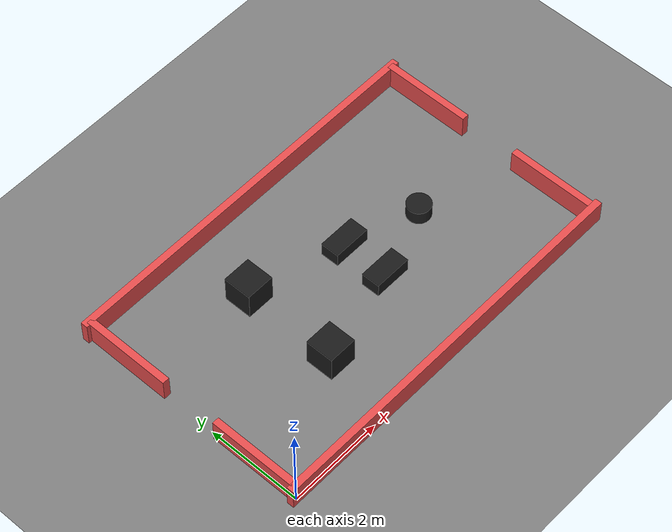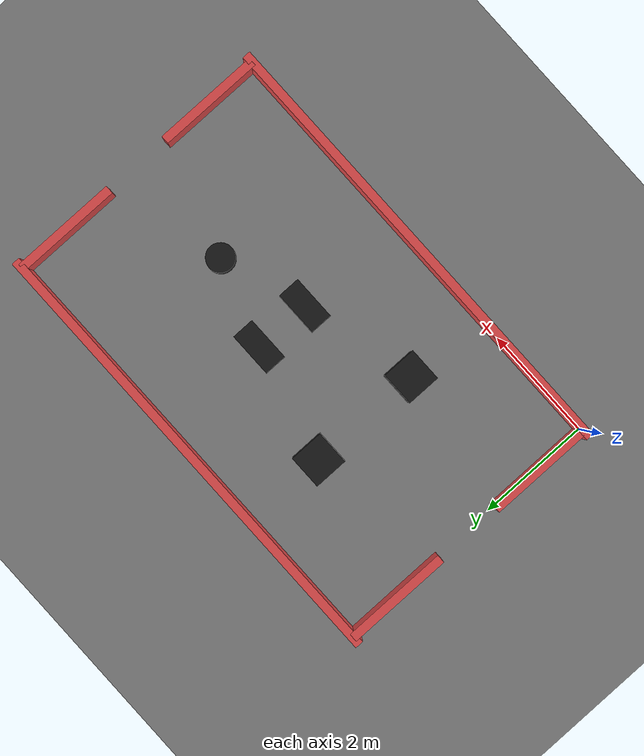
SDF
<?xml version="1.0" ?>
<sdf version="1.6">
  <world name="robot_scene">
    <physics name="default_physics" default="true" type="ode">
      <gravity>0 0 -9.81</gravity>
      <max_step_size>0.004</max_step_size>
      <real_time_factor>1</real_time_factor>
      <real_time_update_rate>250</real_time_update_rate>
    </physics>

    <include>
      <uri>model://sun</uri>
    </include>

    <model name="ground_plane">
      <static>true</static>
      <link name="link">
        <collision name="collision">
          <geometry>
            <plane>
              <normal>0 0 1</normal>
              <size>20 20</size>
            </plane>
          </geometry>
          <surface>
            <friction>
              <ode>
                <mu>10.0</mu>
                <mu2>10.0</mu2>
                <slip1>0.0</slip1>
                <slip2>0.0</slip2>
              </ode>
            </friction>
          </surface>
        </collision>
        <visual name="visual">
          <geometry>
            <plane>
              <normal>0 0 1</normal>
              <size>20 20</size>
            </plane>
          </geometry>
          <material>
            <ambient>0.3 0.3 0.3 1.0</ambient>
            <diffuse>0.5 0.5 0.5 1.0</diffuse>
            <specular>0.1 0.1 0.1 1.0</specular>
          </material>
        </visual>
      </link>
    </model>

    <!-- Boundary Walls: Arena 8 x 5 meters, height 0.5m, thickness 0.15m -->
    <!-- Entrance on left: y in [1.9, 3.1]; Exit on right: y in [1.9, 3.1] -->

    <model name="wall_top">
      <static>true</static>
      <pose>4.0 5.0 0.25 0 0 0</pose>
      <link name="link">
        <collision name="collision">
          <geometry><box><size>8.3 0.15 0.5</size></box></geometry>
        </collision>
        <visual name="visual">
          <geometry><box><size>8.3 0.15 0.5</size></box></geometry>
          <material>
            <ambient>0.8 0.2 0.2 1.0</ambient>
            <diffuse>0.9 0.3 0.3 1.0</diffuse>
            <specular>0.3 0.1 0.1 1.0</specular>
          </material>
        </visual>
      </link>
    </model>

    <model name="wall_bottom">
      <static>true</static>
      <pose>4.0 0.0 0.25 0 0 0</pose>
      <link name="link">
        <collision name="collision">
          <geometry><box><size>8.3 0.15 0.5</size></box></geometry>
        </collision>
        <visual name="visual">
          <geometry><box><size>8.3 0.15 0.5</size></box></geometry>
          <material>
            <ambient>0.8 0.2 0.2 1.0</ambient>
            <diffuse>0.9 0.3 0.3 1.0</diffuse>
            <specular>0.3 0.1 0.1 1.0</specular>
          </material>
        </visual>
      </link>
    </model>

    <model name="wall_left_lower">
      <static>true</static>
      <pose>0.0 0.95 0.25 0 0 0</pose>
      <link name="link">
        <collision name="collision">
          <geometry><box><size>0.15 1.9 0.5</size></box></geometry>
        </collision>
        <visual name="visual">
          <geometry><box><size>0.15 1.9 0.5</size></box></geometry>
          <material>
            <ambient>0.8 0.2 0.2 1.0</ambient>
            <diffuse>0.9 0.3 0.3 1.0</diffuse>
            <specular>0.3 0.1 0.1 1.0</specular>
          </material>
        </visual>
      </link>
    </model>

    <model name="wall_left_upper">
      <static>true</static>
      <pose>0.0 4.05 0.25 0 0 0</pose>
      <link name="link">
        <collision name="collision">
          <geometry><box><size>0.15 1.9 0.5</size></box></geometry>
        </collision>
        <visual name="visual">
          <geometry><box><size>0.15 1.9 0.5</size></box></geometry>
          <material>
            <ambient>0.8 0.2 0.2 1.0</ambient>
            <diffuse>0.9 0.3 0.3 1.0</diffuse>
            <specular>0.3 0.1 0.1 1.0</specular>
          </material>
        </visual>
      </link>
    </model>

    <model name="wall_right_lower">
      <static>true</static>
      <pose>8.0 0.95 0.25 0 0 0</pose>
      <link name="link">
        <collision name="collision">
          <geometry><box><size>0.15 1.9 0.5</size></box></geometry>
        </collision>
        <visual name="visual">
          <geometry><box><size>0.15 1.9 0.5</size></box></geometry>
          <material>
            <ambient>0.8 0.2 0.2 1.0</ambient>
            <diffuse>0.9 0.3 0.3 1.0</diffuse>
            <specular>0.3 0.1 0.1 1.0</specular>
          </material>
        </visual>
      </link>
    </model>

    <model name="wall_right_upper">
      <static>true</static>
      <pose>8.0 4.05 0.25 0 0 0</pose>
      <link name="link">
        <collision name="collision">
          <geometry><box><size>0.15 1.9 0.5</size></box></geometry>
        </collision>
        <visual name="visual">
          <geometry><box><size>0.15 1.9 0.5</size></box></geometry>
          <material>
            <ambient>0.8 0.2 0.2 1.0</ambient>
            <diffuse>0.9 0.3 0.3 1.0</diffuse>
            <specular>0.3 0.1 0.1 1.0</specular>
          </material>
        </visual>
      </link>
    </model>

    <!-- Obstacle 1: Cube at (2.5, 1.5, 0.3) -->
    <model name="obstacle_1">
      <static>true</static>
      <pose>2.5 1.5 0.3 0 0 0</pose>
      <link name="link">
        <collision name="collision">
          <geometry><box><size>0.6 0.6 0.6</size></box></geometry>
        </collision>
        <visual name="visual">
          <geometry><box><size>0.6 0.6 0.6</size></box></geometry>
          <material>
            <ambient>0.05 0.05 0.05 1.0</ambient>
            <diffuse>0.1 0.1 0.1 1.0</diffuse>
            <specular>0.3 0.3 0.3 1.0</specular>
          </material>
        </visual>
      </link>
    </model>

    <!-- Obstacle 2: Cube at (2.5, 3.5, 0.3) -->
    <model name="obstacle_2">
      <static>true</static>
      <pose>2.5 3.5 0.3 0 0 0</pose>
      <link name="link">
        <collision name="collision">
          <geometry><box><size>0.6 0.6 0.6</size></box></geometry>
        </collision>
        <visual name="visual">
          <geometry><box><size>0.6 0.6 0.6</size></box></geometry>
          <material>
            <ambient>0.05 0.05 0.05 1.0</ambient>
            <diffuse>0.1 0.1 0.1 1.0</diffuse>
            <specular>0.3 0.3 0.3 1.0</specular>
          </material>
        </visual>
      </link>
    </model>

    <!-- Obstacle 3: Cuboid at (4.5, 2.0, 0.15) -->
    <model name="obstacle_3">
      <static>true</static>
      <pose>4.5 2.0 0.15 0 0 0</pose>
      <link name="link">
        <collision name="collision">
          <geometry><box><size>0.8 0.4 0.3</size></box></geometry>
        </collision>
        <visual name="visual">
          <geometry><box><size>0.8 0.4 0.3</size></box></geometry>
          <material>
            <ambient>0.05 0.05 0.05 1.0</ambient>
            <diffuse>0.1 0.1 0.1 1.0</diffuse>
            <specular>0.3 0.3 0.3 1.0</specular>
          </material>
        </visual>
      </link>
    </model>

    <!-- Obstacle 4: Cuboid at (4.5, 3.0, 0.15) -->
    <model name="obstacle_4">
      <static>true</static>
      <pose>4.5 3.0 0.15 0 0 0</pose>
      <link name="link">
        <collision name="collision">
          <geometry><box><size>0.8 0.4 0.3</size></box></geometry>
        </collision>
        <visual name="visual">
          <geometry><box><size>0.8 0.4 0.3</size></box></geometry>
          <material>
            <ambient>0.05 0.05 0.05 1.0</ambient>
            <diffuse>0.1 0.1 0.1 1.0</diffuse>
            <specular>0.3 0.3 0.3 1.0</specular>
          </material>
        </visual>
      </link>
    </model>

    <!-- Obstacle 5: Cylinder at (6.0, 2.5, 0.15) -->
    <model name="obstacle_5">
      <static>true</static>
      <pose>6.0 2.5 0.15 0 0 0</pose>
      <link name="link">
        <collision name="collision">
          <geometry><cylinder><radius>0.25</radius><length>0.3</length></cylinder></geometry>
        </collision>
        <visual name="visual">
          <geometry><cylinder><radius>0.25</radius><length>0.3</length></cylinder></geometry>
          <material>
            <ambient>0.05 0.05 0.05 1.0</ambient>
            <diffuse>0.1 0.1 0.1 1.0</diffuse>
            <specular>0.3 0.3 0.3 1.0</specular>
          </material>
        </visual>
      </link>
    </model>

  </world>
</sdf>
